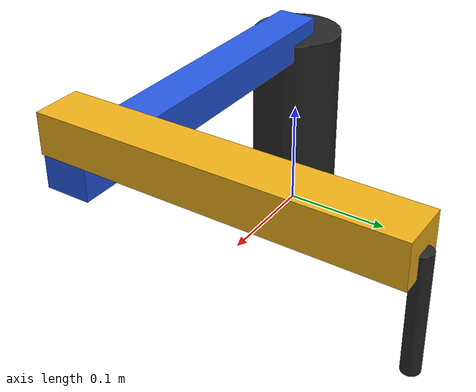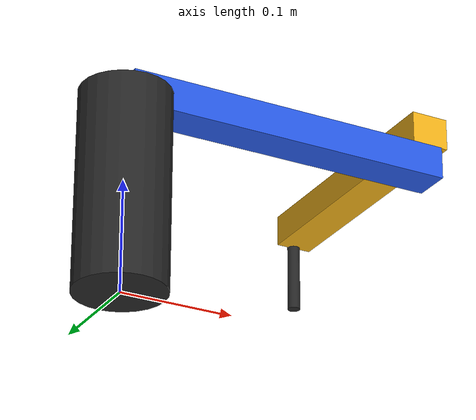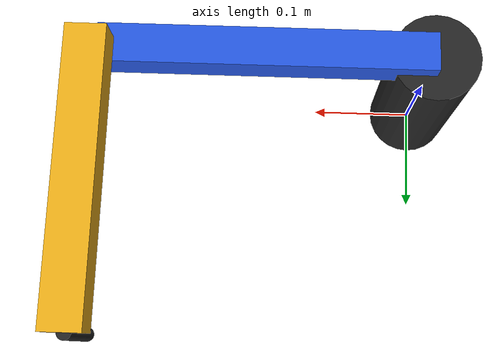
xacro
<?xml version="1.0"?>
<robot name="hw01_arm" xmlns:xacro="http://www.ros.org/wiki/xacro">
  <xacro:arg name="controllers" default="$(find hw01_sim)/config/controllers.yaml"/>
  <material name="blue"><color rgba="0.15 0.35 0.9 1"/></material>
  <material name="yellow"><color rgba="0.95 0.7 0.1 1"/></material>
  <material name="dark"><color rgba="0.15 0.15 0.15 1"/></material>
  <link name="world"/>
  <link name="base_link">
    <inertial><origin xyz="0 0 0.09"/><mass value="5"/>
      <inertia ixx="0.02" ixy="0" ixz="0" iyy="0.02" iyz="0" izz="0.01"/>
    </inertial>
    <visual><origin xyz="0 0 0.09"/><geometry><cylinder radius="0.04" length="0.18"/></geometry><material name="dark"/></visual>
    <collision><origin xyz="0 0 0.09"/><geometry><cylinder radius="0.04" length="0.18"/></geometry></collision>
  </link>
  <joint name="world_to_base" type="fixed"><parent link="world"/><child link="base_link"/></joint>
  <link name="link1">
    <inertial><origin xyz="0.15 0 0"/><mass value="0.5"/>
      <inertia ixx="0.0001" ixy="0" ixz="0" iyy="0.0038" iyz="0" izz="0.0038"/>
    </inertial>
    <visual><origin xyz="0.15 0 0"/><geometry><box size="0.30 0.035 0.03"/></geometry><material name="blue"/></visual>
    <collision><origin xyz="0.15 0 0"/><geometry><box size="0.30 0.035 0.03"/></geometry></collision>
  </link>
  <joint name="shoulder_joint" type="revolute">
    <parent link="base_link"/><child link="link1"/><origin xyz="0 0 0.18"/><axis xyz="0 0 1"/>
    <limit lower="-3.14159265359" upper="3.14159265359" effort="20" velocity="3"/>
    <dynamics damping="0.1" friction="0.01"/>
  </joint>
  <link name="link2">
    <inertial><origin xyz="0.125 0 0"/><mass value="0.4"/>
      <inertia ixx="0.0001" ixy="0" ixz="0" iyy="0.0022" iyz="0" izz="0.0022"/>
    </inertial>
    <visual><origin xyz="0.125 0 0"/><geometry><box size="0.25 0.035 0.03"/></geometry><material name="yellow"/></visual>
    <collision><origin xyz="0.125 0 0"/><geometry><box size="0.25 0.035 0.03"/></geometry></collision>
    <visual><origin xyz="0.25 0 -0.04"/><geometry><cylinder radius="0.006" length="0.08"/></geometry><material name="dark"/></visual>
    <collision><origin xyz="0.25 0 -0.04"/><geometry><cylinder radius="0.006" length="0.08"/></geometry></collision>
  </link>
  <joint name="elbow_joint" type="revolute">
    <parent link="link1"/><child link="link2"/><origin xyz="0.30 0 0.04"/><axis xyz="0 0 1"/>
    <limit lower="0.1" upper="3.04159265359" effort="20" velocity="3"/>
    <dynamics damping="0.1" friction="0.01"/>
  </joint>
  <link name="tool0"/>
  <joint name="tool_fixed" type="fixed"><parent link="link2"/><child link="tool0"/><origin xyz="0.25 0 -0.08"/></joint>
  <ros2_control name="HW1Arm" type="system">
    <hardware><plugin>gz_ros2_control/GazeboSimSystem</plugin></hardware>
    <joint name="shoulder_joint">
      <command_interface name="position"/>
      <state_interface name="position"><param name="initial_value">-1.5</param></state_interface>
      <state_interface name="velocity"/>
    </joint>
    <joint name="elbow_joint">
      <command_interface name="position"/>
      <state_interface name="position"><param name="initial_value">2.5</param></state_interface>
      <state_interface name="velocity"/>
    </joint>
  </ros2_control>
  <gazebo>
    <plugin filename="gz_ros2_control-system" name="gz_ros2_control::GazeboSimROS2ControlPlugin">
      <parameters>$(arg controllers)</parameters>
    </plugin>
  </gazebo>
</robot>
